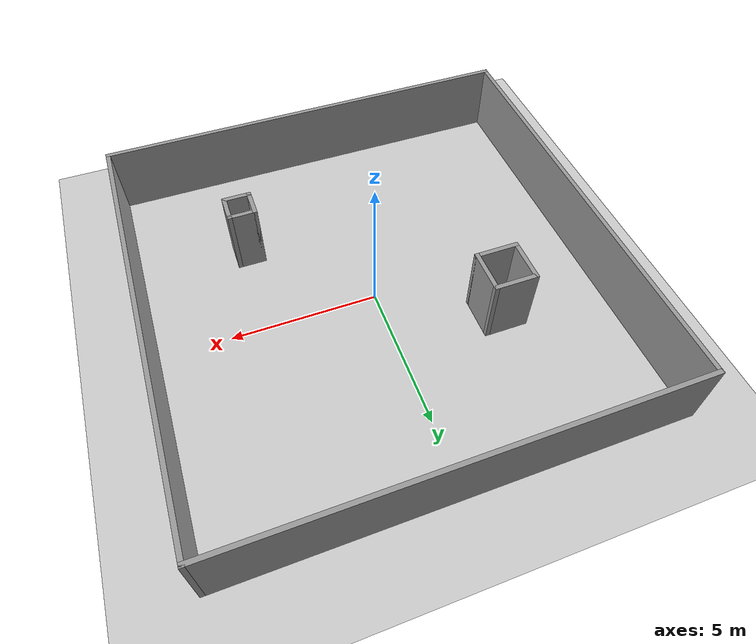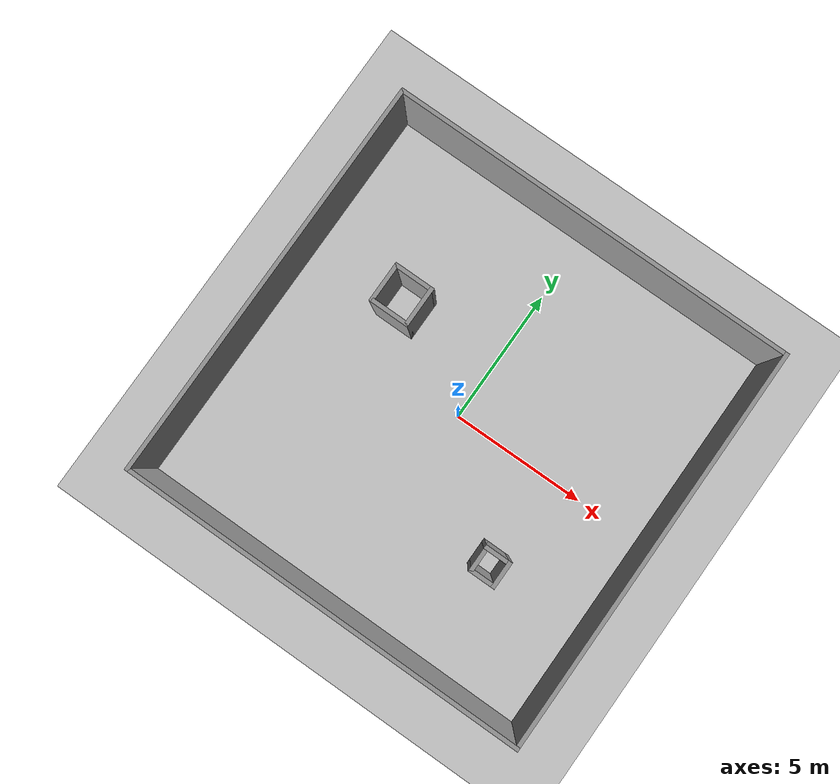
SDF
<sdf version="1.7">
 <world name="default">
  <light name="sun" type="directional">
   <pose>0 0 10 0 -0 0</pose>
   <diffuse>0.8 0.8 0.8 1</diffuse>
   <specular>0.2 0.2 0.2 1</specular>
   <attenuation>
    <range>1000</range>
    <constant>0.9</constant>
    <linear>0.01</linear>
    <quadratic>0.001</quadratic>
   </attenuation>
   <direction>-0.5 0.1 -0.9</direction>
   <spot><inner_angle>0</inner_angle><outer_angle>0</outer_angle><falloff>0</falloff></spot>
  </light>
  <model name="ground_plane">
   <static>1</static>
   <link name="link">
    <collision name="collision">
     <geometry><plane><normal>0 0 1</normal><size>100 100</size></plane></geometry>
     <surface>
      <contact><collide_bitmask>65535</collide_bitmask></contact>
      <friction><ode><mu>100</mu><mu2>50</mu2></ode></friction>
     </surface>
    </collision>
    <visual name="visual">
     <cast_shadows>0</cast_shadows>
     <geometry><plane><normal>0 0 1</normal><size>100 100</size></plane></geometry>
     <material>
      <script><uri>file://media/materials/scripts/gazebo.material</uri><name>Gazebo/Grey</name></script>
     </material>
    </visual>
   </link>
  </model>
  <model name="wall_outler">
   <link name="Wall_1">
    <collision name="Wall_1_Collision">
     <geometry><box><size>15 0.15 2.5</size></box></geometry>
     <pose>0 0 1.25 0 -0 0</pose>
    </collision>
    <visual name="Wall_1_Visual">
     <pose>0 0 1.25 0 -0 0</pose>
     <geometry><box><size>15 0.15 2.5</size></box></geometry>
     <material>
      <script><uri>file://media/materials/scripts/gazebo.material</uri><name>Gazebo/Grey</name></script>
      <ambient>1 1 1 1</ambient>
     </material>
     <meta><layer>0</layer></meta>
    </visual>
    <pose>-0 -7.425 0 0 -0 0</pose>
   </link>
   <link name="Wall_2">
    <collision name="Wall_2_Collision">
     <geometry><box><size>15 0.15 2.5</size></box></geometry>
     <pose>0 0 1.25 0 -0 0</pose>
    </collision>
    <visual name="Wall_2_Visual">
     <pose>0 0 1.25 0 -0 0</pose>
     <geometry><box><size>15 0.15 2.5</size></box></geometry>
     <material>
      <script><uri>file://media/materials/scripts/gazebo.material</uri><name>Gazebo/Grey</name></script>
      <ambient>1 1 1 1</ambient>
     </material>
     <meta><layer>0</layer></meta>
    </visual>
    <pose>7.425 -0 0 0 -0 1.5708</pose>
   </link>
   <link name="Wall_3">
    <collision name="Wall_3_Collision">
     <geometry><box><size>15 0.15 2.5</size></box></geometry>
     <pose>0 0 1.25 0 -0 0</pose>
    </collision>
    <visual name="Wall_3_Visual">
     <pose>0 0 1.25 0 -0 0</pose>
     <geometry><box><size>15 0.15 2.5</size></box></geometry>
     <material>
      <script><uri>file://media/materials/scripts/gazebo.material</uri><name>Gazebo/Grey</name></script>
      <ambient>1 1 1 1</ambient>
     </material>
     <meta><layer>0</layer></meta>
    </visual>
    <pose>-0 7.425 0 0 -0 3.14159</pose>
   </link>
   <link name="Wall_4">
    <collision name="Wall_4_Collision">
     <geometry><box><size>15 0.15 2.5</size></box></geometry>
     <pose>0 0 1.25 0 -0 0</pose>
    </collision>
    <visual name="Wall_4_Visual">
     <pose>0 0 1.25 0 -0 0</pose>
     <geometry><box><size>15 0.15 2.5</size></box></geometry>
     <material>
      <script><uri>file://media/materials/scripts/gazebo.material</uri><name>Gazebo/Grey</name></script>
      <ambient>1 1 1 1</ambient>
     </material>
     <meta><layer>0</layer></meta>
    </visual>
    <pose>-7.425 -0 0 0 -0 -1.5708</pose>
   </link>
   <static>1</static>
  </model>
  <model name="pillar1">
   <pose>-2 2 0 0 -0 0</pose>
   <link name="Wall_10">
    <collision name="Wall_10_Collision">
     <geometry><box><size>1.5 0.15 2.5</size></box></geometry>
     <pose>0 0 1.25 0 -0 0</pose>
    </collision>
    <visual name="Wall_10_Visual">
     <pose>0 0 1.25 0 -0 0</pose>
     <geometry><box><size>1.5 0.15 2.5</size></box></geometry>
     <material>
      <script><uri>file://media/materials/scripts/gazebo.material</uri><name>Gazebo/Grey</name></script>
      <ambient>1 1 1 1</ambient>
     </material>
     <meta><layer>0</layer></meta>
    </visual>
    <pose>-1.608 0.675 0 0 -0 3.14159</pose>
   </link>
   <link name="Wall_7">
    <collision name="Wall_7_Collision">
     <geometry><box><size>1.5 0.15 2.5</size></box></geometry>
     <pose>0 0 1.25 0 -0 0</pose>
    </collision>
    <visual name="Wall_7_Visual">
     <pose>0 0 1.25 0 -0 0</pose>
     <geometry><box><size>1.5 0.15 2.5</size></box></geometry>
     <material>
      <script><uri>file://media/materials/scripts/gazebo.material</uri><name>Gazebo/Grey</name></script>
      <ambient>1 1 1 1</ambient>
     </material>
     <meta><layer>0</layer></meta>
    </visual>
    <pose>-2.283 0 0 0 -0 -1.5708</pose>
   </link>
   <link name="Wall_8">
    <collision name="Wall_8_Collision">
     <geometry><box><size>1.5 0.15 2.5</size></box></geometry>
     <pose>0 0 1.25 0 -0 0</pose>
    </collision>
    <visual name="Wall_8_Visual">
     <pose>0 0 1.25 0 -0 0</pose>
     <geometry><box><size>1.5 0.15 2.5</size></box></geometry>
     <material>
      <script><uri>file://media/materials/scripts/gazebo.material</uri><name>Gazebo/Grey</name></script>
      <ambient>1 1 1 1</ambient>
     </material>
     <meta><layer>0</layer></meta>
    </visual>
    <pose>-1.608 -0.675 0 0 -0 0</pose>
   </link>
   <link name="Wall_9">
    <collision name="Wall_9_Collision">
     <geometry><box><size>1.5 0.15 2.5</size></box></geometry>
     <pose>0 0 1.25 0 -0 0</pose>
    </collision>
    <visual name="Wall_9_Visual">
     <pose>0 0 1.25 0 -0 0</pose>
     <geometry><box><size>1.5 0.15 2.5</size></box></geometry>
     <material>
      <script><uri>file://media/materials/scripts/gazebo.material</uri><name>Gazebo/Grey</name></script>
      <ambient>1 1 1 1</ambient>
     </material>
     <meta><layer>0</layer></meta>
    </visual>
    <pose>-0.933002 0 0 0 -0 1.5708</pose>
   </link>
   <static>1</static>
  </model>
  <model name="pillar2">
   <pose>5 -2 0 0 -0 0</pose>
   <link name="Wall_12">
    <collision name="Wall_12_Collision">
     <geometry><box><size>1 0.15 2.5</size></box></geometry>
     <pose>0 0 1.25 0 -0 0</pose>
    </collision>
    <visual name="Wall_12_Visual">
     <pose>0 0 1.25 0 -0 0</pose>
     <geometry><box><size>1 0.15 2.5</size></box></geometry>
     <material>
      <script><uri>file://media/materials/scripts/gazebo.material</uri><name>Gazebo/Grey</name></script>
      <ambient>1 1 1 1</ambient>
     </material>
     <meta><layer>0</layer></meta>
    </visual>
    <pose>-1.83014 -1.3808 0 0 -0 -1.5708</pose>
   </link>
   <link name="Wall_13">
    <collision name="Wall_13_Collision">
     <geometry><box><size>1 0.15 2.5</size></box></geometry>
     <pose>0 0 1.25 0 -0 0</pose>
    </collision>
    <visual name="Wall_13_Visual">
     <pose>0 0 1.25 0 -0 0</pose>
     <geometry><box><size>1 0.15 2.5</size></box></geometry>
     <material>
      <script><uri>file://media/materials/scripts/gazebo.material</uri><name>Gazebo/Grey</name></script>
      <ambient>1 1 1 1</ambient>
     </material>
     <meta><layer>0</layer></meta>
    </visual>
    <pose>-1.40515 -1.8058 0 0 -0 0</pose>
   </link>
   <link name="Wall_14">
    <collision name="Wall_14_Collision">
     <geometry><box><size>1 0.15 2.5</size></box></geometry>
     <pose>0 0 1.25 0 -0 0</pose>
    </collision>
    <visual name="Wall_14_Visual">
     <pose>0 0 1.25 0 -0 0</pose>
     <geometry><box><size>1 0.15 2.5</size></box></geometry>
     <material>
      <script><uri>file://media/materials/scripts/gazebo.material</uri><name>Gazebo/Grey</name></script>
      <ambient>1 1 1 1</ambient>
     </material>
     <meta><layer>0</layer></meta>
    </visual>
    <pose>-0.980145 -1.3808 0 0 -0 1.5708</pose>
   </link>
   <link name="Wall_15">
    <collision name="Wall_15_Collision">
     <geometry><box><size>1 0.15 2.5</size></box></geometry>
     <pose>0 0 1.25 0 -0 0</pose>
    </collision>
    <visual name="Wall_15_Visual">
     <pose>0 0 1.25 0 -0 0</pose>
     <geometry><box><size>1 0.15 2.5</size></box></geometry>
     <material>
      <script><uri>file://media/materials/scripts/gazebo.material</uri><name>Gazebo/Grey</name></script>
      <ambient>1 1 1 1</ambient>
     </material>
     <meta><layer>0</layer></meta>
    </visual>
    <pose>-1.40515 -0.955801 0 0 -0 3.14159</pose>
   </link>
   <static>1</static>
  </model>
  <gravity>0 0 -9.8</gravity>
  <magnetic_field>6e-06 2.3e-05 -4.2e-05</magnetic_field>
  <atmosphere type="adiabatic"/>
  <physics type="ode">
   <max_step_size>0.001</max_step_size>
   <real_time_factor>1</real_time_factor>
   <real_time_update_rate>1000</real_time_update_rate>
  </physics>
  <scene><ambient>0.4 0.4 0.4 1</ambient><background>0.7 0.7 0.7 1</background><shadows>1</shadows></scene>
  <audio><device>default</device></audio>
  <spherical_coordinates>
   <surface_model>EARTH_WGS84</surface_model>
   <latitude_deg>0</latitude_deg>
   <longitude_deg>0</longitude_deg>
   <elevation>0</elevation>
   <heading_deg>0</heading_deg>
  </spherical_coordinates>
 </world>
</sdf>
